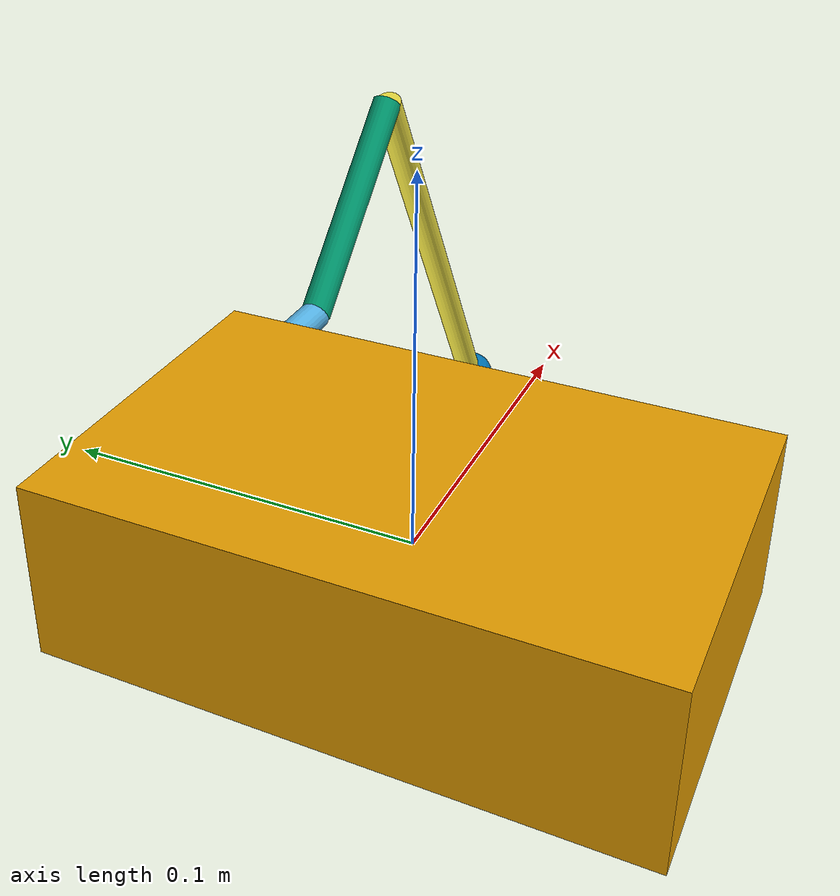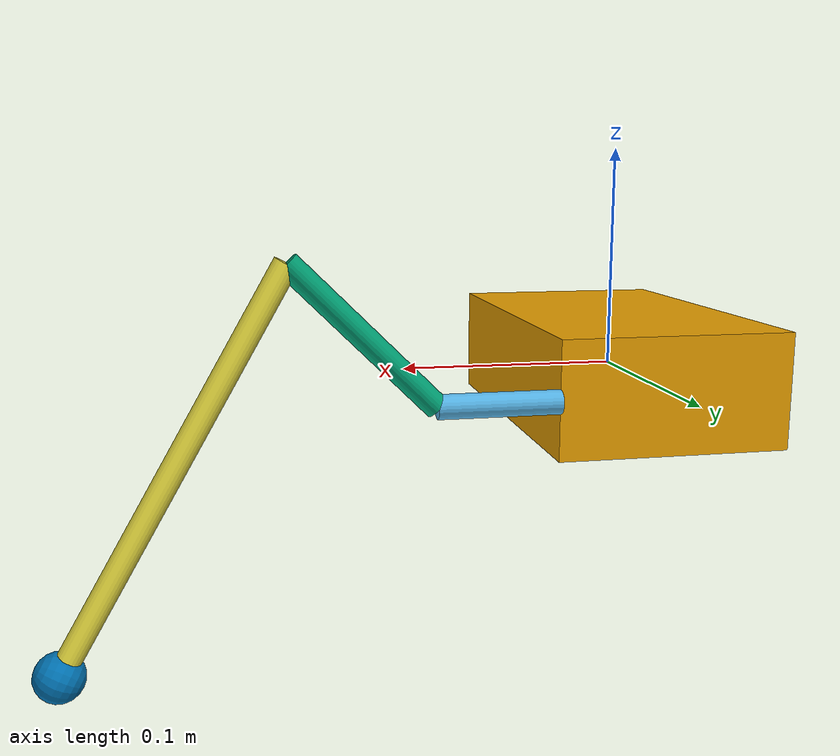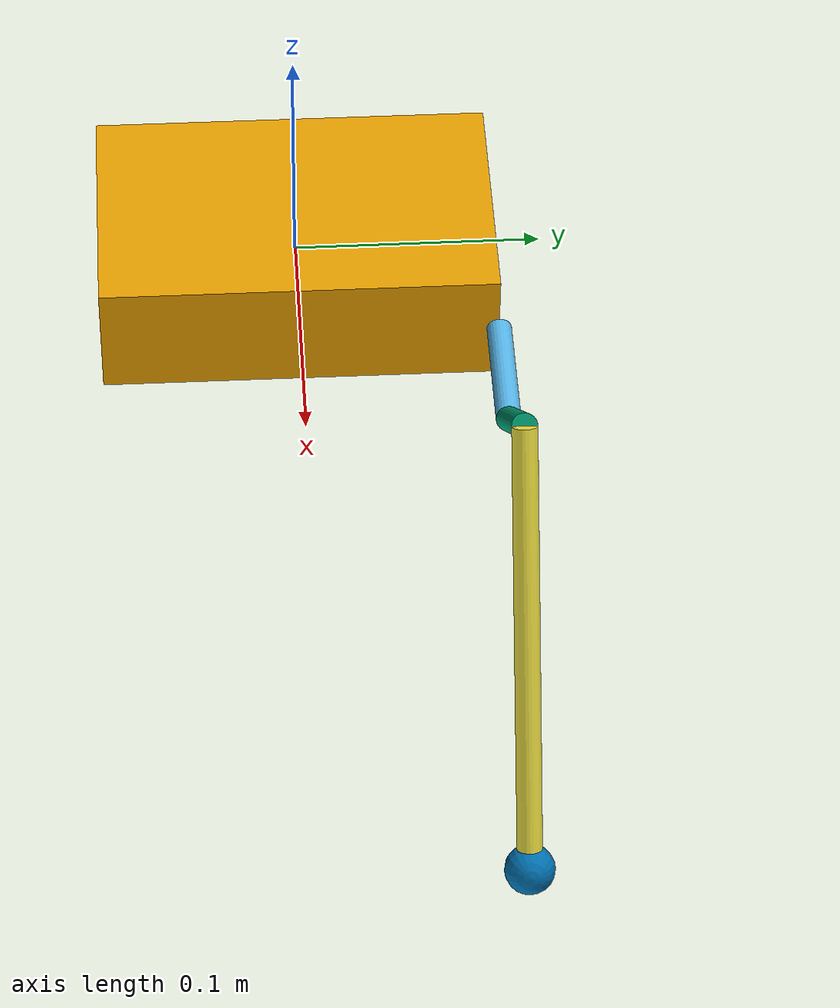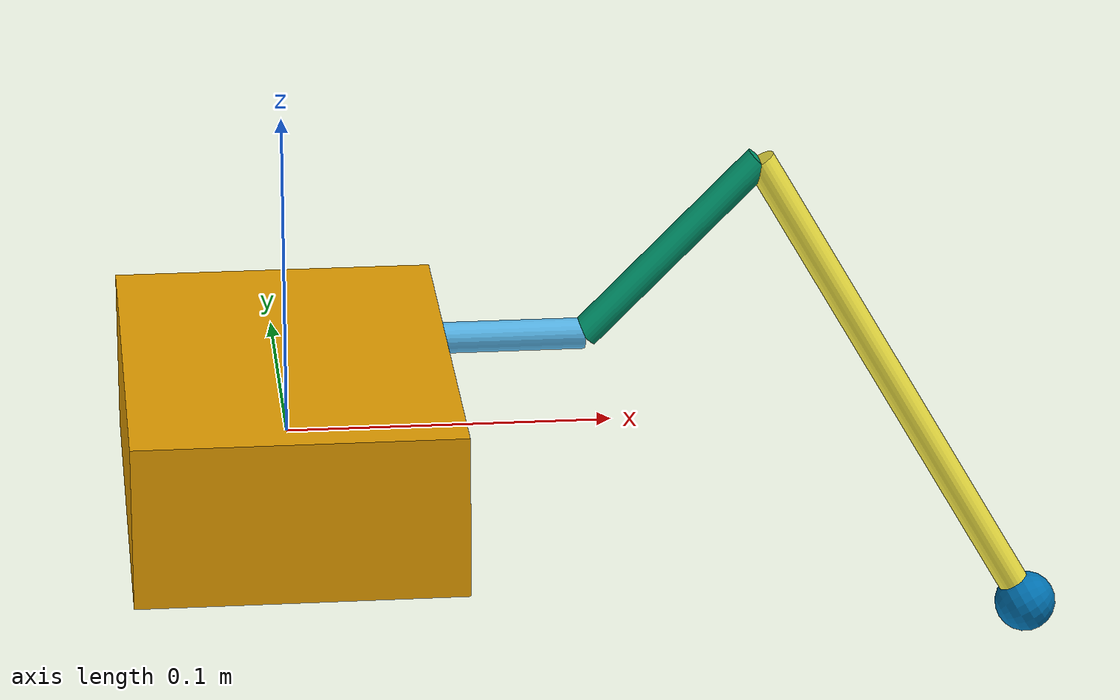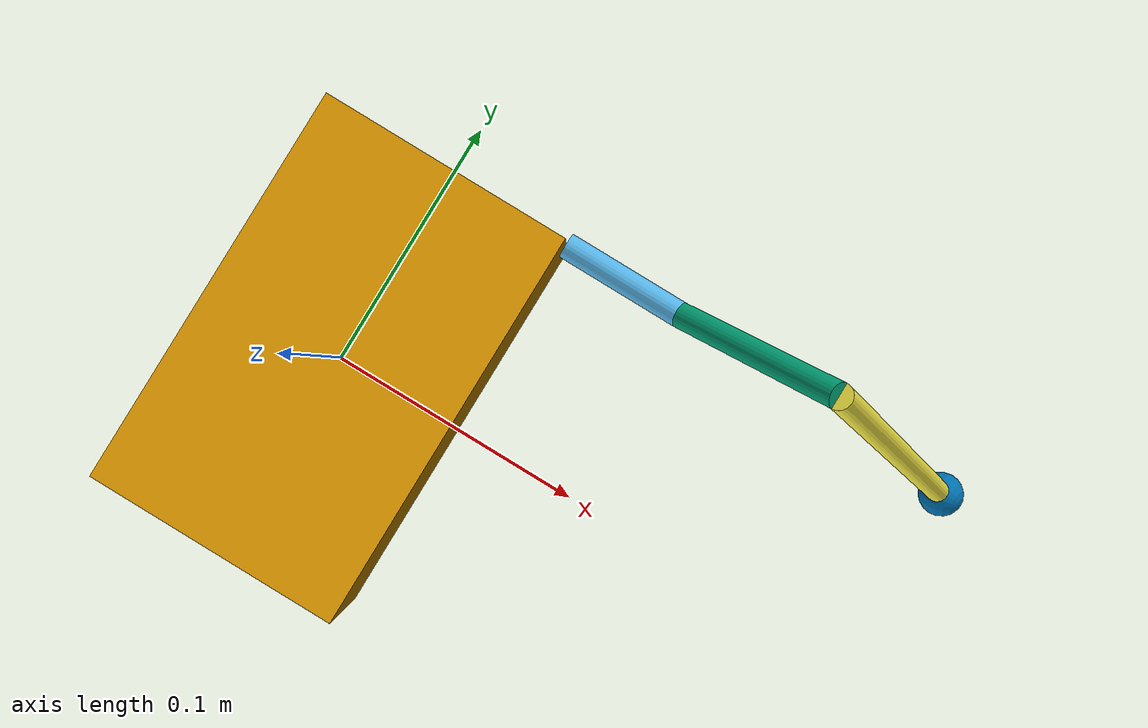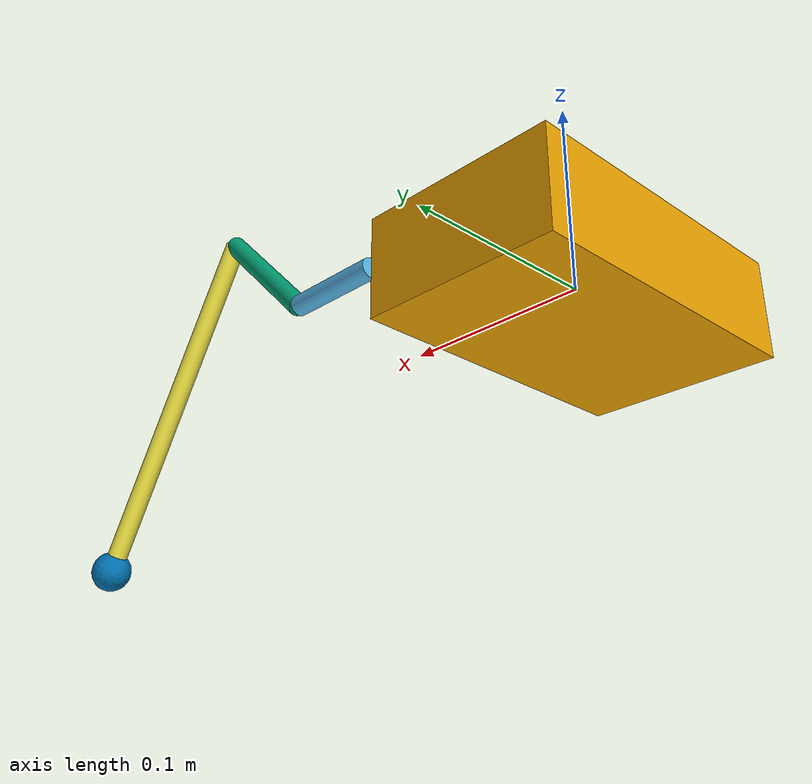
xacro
<?xml version="1.0"?>
<robot name="hexa" xmlns:xacro="http://ros.org/wiki/xacro">
  <xacro:property name="body_x" value="0.100"/>
  <xacro:property name="body_y" value="0.160"/>
  <xacro:property name="body_z" value="0.050"/>

  <xacro:property name="coxa_length" value="0.050"/>
  <xacro:property name="femur_length" value="0.080"/>
  <xacro:property name="tibia_length" value="0.180"/>
  <xacro:property name="leg_radius" value="0.005"/>
  <xacro:property name="femur_angle" value="${45*pi/180}"/>
  <xacro:property name="tibia_angle" value="${105*pi/180}"/>
  <xacro:property name="foot_radius" value="0.010"/>

  <xacro:property name="mg90s_torque" value="${0.21582*0.8}"/> <!--stalltorque on earth is 2.2kgcm at 6v, 20% safety margin -->
  <xacro:property name="mg90s_velocity" value="${0.8*180/60/pi*0.8}"/> <!--0.08sec/60degrees at 6v, 20% safety margin -->

  <!--${tibia_length*cos(pi/2-femur_angle-tibia_angle)-femur_length*sin(femur_angle)+foot_radius/2+0.005}-->

  <link name="base_link">
    <visual>
      <origin xyz="0 0 0" />
      <geometry>
        <box size="${body_x} ${body_y} ${body_z}"/>
      </geometry>
    </visual>
    <collision>
      <geometry>
        <box size="${body_x} ${body_y} ${body_z}"/>
      </geometry>
    </collision>
  </link>

  <link name="right_front_coxa">
    <visual>
      <origin xyz="${coxa_length/2} 0 0" rpy="0 ${pi/2} 0"/>
      <geometry>
        <cylinder radius="${leg_radius}" length="${coxa_length}"/>
      </geometry>
    </visual>
  </link>

  <joint name="base_to_right_front_coxa" type="revolute">
    <parent link="base_link"/>
    <child link="right_front_coxa"/>
    <origin xyz="${body_x/2} ${body_y/2} 0" rpy="0 0 0"/>
    <limit upper="${80/180*pi}" lower="${-80/180*pi}" effort="${mg90s_torque}" velocity="${mg90s_velocity}"/>
    <axis xyz="0 0 1"/>
  </joint>

  <link name="right_front_femur">
    <visual>
      <origin xyz="${femur_length/2} 0 0" rpy="0 ${pi/2} 0"/>
      <geometry>
        <cylinder radius="${leg_radius}" length="${femur_length}"/>
      </geometry>
    </visual>
  </link>

  <joint name="right_front_coxa_to_right_front_femur" type="revolute">
    <parent link="right_front_coxa"/>
    <child link="right_front_femur"/>
    <origin xyz="${coxa_length} 0 0" rpy="0 ${-femur_angle} 0"/>
    <limit upper="${80/180*pi}" lower="${-80/180*pi}" effort="${mg90s_torque}" velocity="${mg90s_velocity}"/>
    <axis xyz="0 1 0"/>
  </joint>

  <link name="right_front_tibia">
    <visual>
      <origin xyz="${tibia_length/2} 0 0" rpy="0 ${pi/2} 0"/>
      <geometry>
        <cylinder radius="${leg_radius}" length="${tibia_length}"/>
      </geometry>
    </visual>
  </link>

  <joint name="right_front_femur_to_right_front_tibia" type="revolute">
    <parent link="right_front_femur"/>
    <child link="right_front_tibia"/>
    <origin xyz="${femur_length} 0 0" rpy="0 ${tibia_angle} 0"/>
    <limit upper="${80/180*pi}" lower="${-80/180*pi}" effort="${mg90s_torque}" velocity="${mg90s_velocity}"/>
    <axis xyz="0 1 0"/>
  </joint>

  <link name="right_front_foot">
    <visual>
      <origin xyz="0 0 0" rpy="0 0 0"/>
      <geometry>
        <sphere radius="${foot_radius}"/>
      </geometry>
    </visual>
    <collision>
      <origin xyz="0 0 0" rpy="0 0 0"/>
      <geometry>
        <sphere radius="${foot_radius}"/>
      </geometry>
    </collision>
  </link>

  <joint name="right_front_tibia_to_right_front_foot" type="fixed">
    <parent link="right_front_tibia"/>
    <child link="right_front_foot"/>
    <origin xyz="${tibia_length} 0 0" rpy="0 0 0"/>

  </joint>

 </robot>
